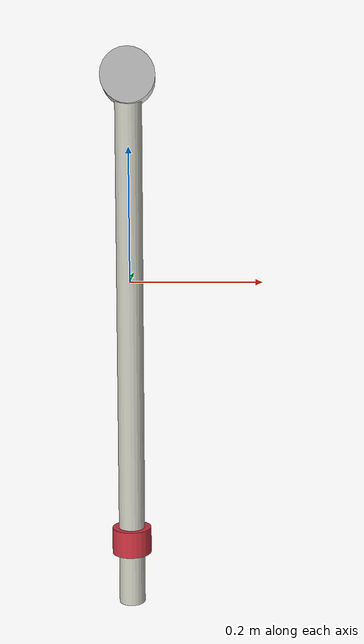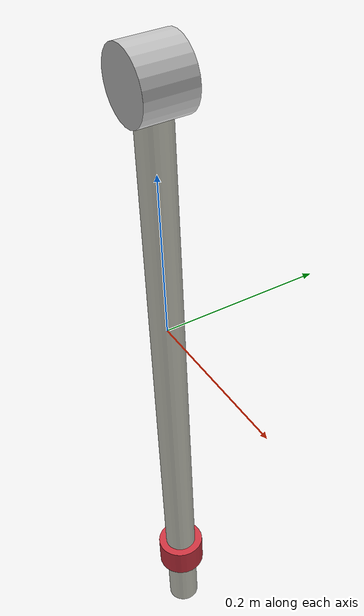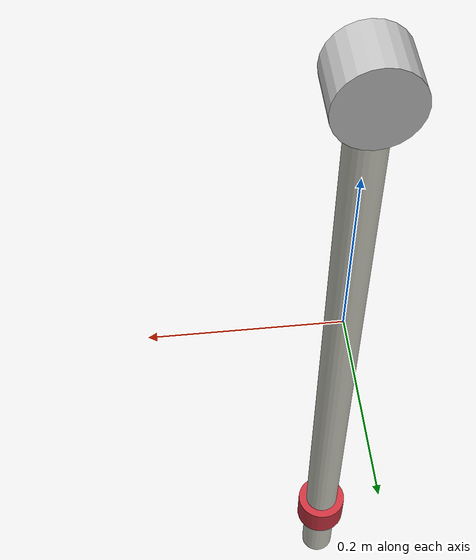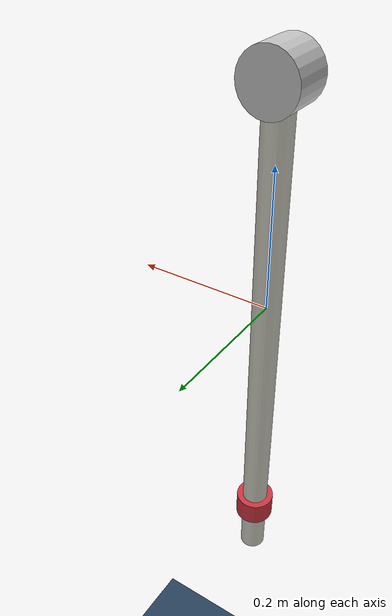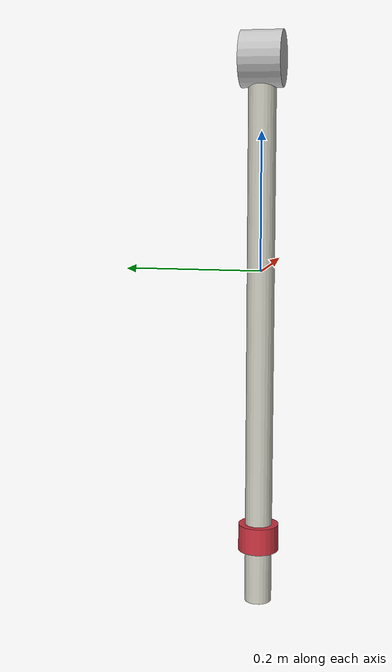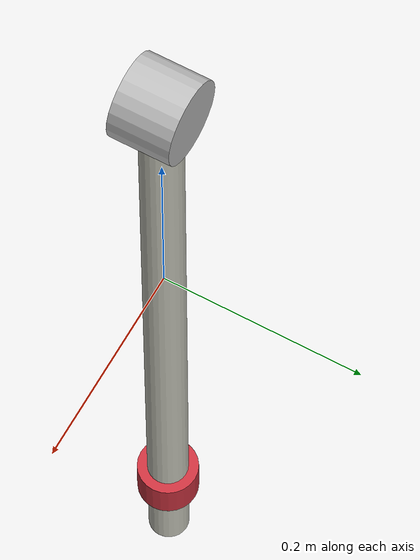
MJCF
<?xml version="1.0" encoding="utf-8"?>

<mujoco model="rotating_pole">
    <compiler eulerseq="XYZ" fitaabb="true" angle="radian" autolimits="true"/>
    <option timestep="0.001" gravity="0 0 -9.81"/>

    <asset>
        <texture name="skybox" type="skybox" builtin="gradient" rgb1="0.2 0.3 0.4" rgb2="0 0 0" width="1000" height="1000" mark="random" random="0.001" markrgb="1 1 1"/>
        <texture type="2d" name="groundplane" builtin="checker" mark="edge" rgb1="0.2 0.3 0.4" rgb2="0.1 0.2 0.3" markrgb="0.8 0.8 0.8" width="1000" height="1000"/>
        <material name="groundplane" texture="groundplane" texuniform="true" texrepeat="5 5" reflectance="0.2"/>
    </asset>

    <worldbody>
        <geom name="floor" pos="0 0 -1" size="5 5 0.1" type="plane" material="groundplane"/>
        <light directional="true" diffuse=".8 .8 .8" specular=".2 .2 .2" pos="0 0 3" dir="0 0 -1"/>

        <body name="hinge_mount" pos="0 0 0.3" mocap="true">
            <geom name="mount" type="cylinder" size="0.04 0.03" rgba="0.75 0.75 0.75 1" mass="0.5" euler="1.5708 0 0" />

            <!-- pole and spin -->
            <body name="pole" pos="0 0 0" gravcomp="1">
                <inertial pos="0 0 -0.4" mass="0.5" diaginertia="0.1 0.1 0.01"/>
                <joint name="spin" type="hinge" axis="0 1 0" pos="0 0 0"/>
                <geom name="pole_geom" type="cylinder" size="0.02 0.4" pos="0 0 -0.4" rgba="0.8 0.8 0.75 1" mass="0.5" />

                <!-- imu site -->
               <site name="imu" pos="0 0 -0.7"/>
               <geom name="imu_visual" type="cylinder" size="0.03 0.02" pos="0 0 -0.7" rgba="0.8 0.2 0.25 1" mass="0.05"/>
            </body>
        </body>

        <light pos="0 0 2" dir="0 0 -1" diffuse="0.8 0.8 0.8"/>
    </worldbody>

    <actuator>
        <velocity name="motor" joint="spin" kv="200" gear="1" ctrlrange="-10 10"/>
    </actuator>

    <sensor>
        <gyro name="angular-velocity" site="imu" noise="0"/>
        <accelerometer name="linear-acceleration" site="imu" noise="0"/>
        <framequat name="orientation" objtype="site" objname="imu" noise="0"/>
    </sensor>
</mujoco>
